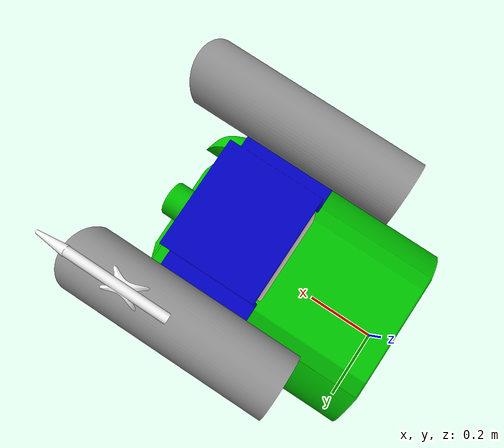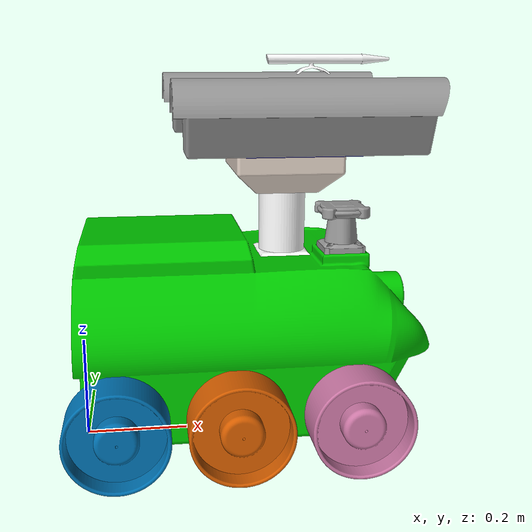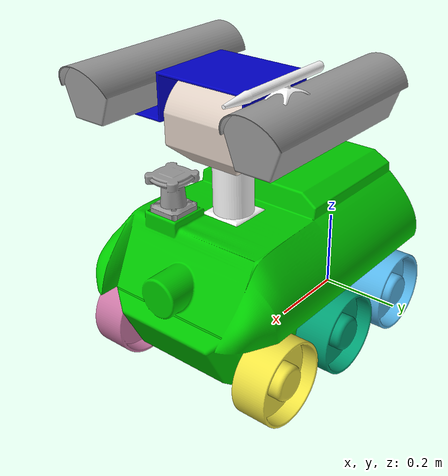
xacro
<?xml version="1.0"?>
<robot name="MRC_Plastun" xmlns:xacro="http://www.ros.org/wiki/xacro">

	<!-- Import all Gazebo-customization elements, including Gazebo colors -->
	<xacro:include filename="$(find plastun_description)/urdf/plastun.gazebo" />
	<!-- Import Rviz colors -->
	<xacro:include filename="$(find plastun_description)/urdf/materials.xacro" />

	<!-- Constants for robot dimensions -->
	<xacro:property name="chassis_z_offset" value="0.0435" />

	<xacro:property name="x_camera_offset" value="0.2" />
	<xacro:property name="y_camera_offset" value="0" />
	<xacro:property name="z_camera_offset" value="0.0546695" />

	<xacro:property name="x_lazer_ukazka_offset" value="0.171" />
	<xacro:property name="y_lazer_ukazka_offset" value="0" />
	<xacro:property name="z_lazer_ukazka_offset" value="0.045" />

	<xacro:property name="x_hokuyo_offset" value="0" />
	<xacro:property name="y_hokuyo_offset" value="0" />
	<xacro:property name="z_hokuyo_offset" value="0.1" />

	<xacro:property name="y_wheel" value="0.20499" />
	<xacro:property name="z_wheel" value=" 0.096" />
	<xacro:property name="between_wheels" value="0.22145" />

	<xacro:property name="x_camera" value="0" />
	<xacro:property name="y_camera" value="0.21" />
	<xacro:property name="z_camera" value="0.003" />

	<xacro:macro name="wheel" params="prefix num side rev collision">
		<link name="wheel_${prefix}_${num}">
			<inertial>
				<mass value="0.03"/>
				<origin rpy="0  0  0" xyz="0  0.000007723  0"/>
				<inertia ixx="0.000000000" ixy="0" ixz="0" iyy="0.000000000" iyz="0" izz="0.000000000"/>
			</inertial>
	<xacro:if value="${collision == 1}">
			<collision >
				<origin rpy="1.5708  0      0" xyz="0  0  0"/>
				<geometry>
					<cylinder length="0.09" radius="0.096"/>
				</geometry>
			</collision>
	</xacro:if>
			<visual>
				<origin rpy="0  0  0" xyz="0  0  0"/>
				<geometry>
					<mesh filename="package://plastun_description/meshes/STL_min/wheel.stl" scale="1.0 1.0 1.0"/>
				</geometry>
			</visual>
		</link>

		<joint name="wheel_${rev}_${num}" type="revolute">
			<parent link="chassis"/>
			<child link="wheel_${prefix}_${num}"/>
			<origin rpy="0       0      0" xyz="${0.0666644 + (num - 1) * between_wheels} ${y_wheel * side}   ${z_wheel}"/>
			<axis xyz="0 1  0"/>
			<limit effort="-1" lower="-1e+100" upper="1e+100" velocity="100"/>
		</joint>
	</xacro:macro>

	<xacro:macro name="transmission_wheel" params="rev num side_name collision">
	<xacro:if value="${collision == 1}">
		<transmission name="wheel_${side_name}_${num}">
			<type>transmission_interface/SimpleTransmission</type>
			<joint name="wheel_${rev}_${num}">
				<hardwareInterface>EffortJointInterface</hardwareInterface>
			</joint>
			<actuator name="wh_${side_name}_${num}">
				<hardwareInterface>EffortJointInterface</hardwareInterface>
				<mechanicalReduction>1</mechanicalReduction>
			</actuator>
		</transmission>
	</xacro:if>
	</xacro:macro>

	<xacro:macro name="camer" params="num side">
		<link name="camera_${num}">
			<inertial>
				<mass value="0.001"/>
				<origin rpy="0  0  0" xyz="0.000021536  -0.000000325  0.060192452"/>
				<inertia ixx="0.00034961" ixy="0" ixz="0" iyy="0.00243426" iyz="0" izz="0.0027544"/>
			</inertial>
			<collision >
				<origin rpy="0  0  0" xyz="-${x_camera_offset}  -${y_camera_offset}  -${z_camera_offset}"/>
				<geometry>
					<mesh filename="package://plastun_description/meshes/STL_min/camera.stl" scale="1 1 1"/>
				</geometry>
			</collision>
			<visual >
				<origin rpy="0  0  0" xyz="-${x_camera_offset}  -${y_camera_offset}  -${z_camera_offset}"/>
				<geometry>
					<mesh filename="package://plastun_description/meshes/STL_min/camera.stl" scale="1 1 1"/>
				</geometry>
			</visual>
		</link>

		<joint name="turrel_vverh_camera_${num}_fixed" type="fixed">
			<parent link="turrel_vverh"/>
			<child link="camera_${num}"/>
			<origin rpy="0       0       0" xyz="${x_camera + x_camera_offset}  ${(y_camera_offset + y_camera) * side} ${z_camera + z_camera_offset}"/>
			<axis xyz="0  0  0"/>
			<limit effort="0" lower="0" upper="0" velocity="0"/>
		</joint>
	</xacro:macro>

	<link name="base_link"/>

	<joint name="base_link_chassis_fixed" type="fixed">
		<parent link="base_link"/>
		<child link="chassis"/>
	</joint>

	<link name="chassis">
		<inertial>
			<mass value="35"/>
			<origin rpy="0  0  0" xyz="0.289120720 -0.000018254  0.186368419"/>
			<inertia ixx="3.1081800"  ixy="-0.25460189"  ixz="2.0318174" iyy="6.3787776" iyz="0.16417863" izz="5.3316425" />
		</inertial>
		<collision >
			<origin rpy="0  0  0" xyz="0 0  ${chassis_z_offset}"/>
			<geometry>
				<mesh filename="package://plastun_description/meshes/STL_min/chassis.stl" scale="1.0 1.0 1.0"/>
			</geometry>
		</collision>
		<visual >
			<origin rpy="0  0  0" xyz="0 0  ${chassis_z_offset}"/>
			<geometry>
				<mesh filename="package://plastun_description/meshes/STL_min/chassis.stl" scale="1 1 1"/>
			</geometry>
			<material name="green"/>
		</visual>
	</link>

	<!--laser sensors -->
	<link name="lazer_ukazka">
		<inertial>
			<mass value="0.001"/>
			<origin rpy="0  0  0" xyz="0.017977372  -0.000001823  0.034613516"/>
			<inertia ixx="0.0" ixy="0" ixz="0" iyy="0.0" iyz="0" izz="0.0"/>
		</inertial>
		<visual >
			<origin rpy="0  0  0" xyz="-${x_lazer_ukazka_offset}  -${y_lazer_ukazka_offset}  -${z_lazer_ukazka_offset}"/>
			<geometry>
				<mesh filename="package://plastun_description/meshes/STL_min/lazer_ukazka.stl" scale="1.0 1.0 1.0"/>
			</geometry>
			<material name="white"/>
		</visual>
	</link>

	<link name="hokuyo">
		<inertial>
			<mass value="0.3"/>
			<origin rpy="0  0  0" xyz="-0.000000763  -0.000000289  0.053961822"/>
			<inertia ixx="0.000000000" ixy="0" ixz="0" iyy="0.000000000" iyz="0" izz="0.000000000"/>
		</inertial>
		<visual >
			<origin rpy="0  0  0" xyz="-${x_hokuyo_offset}  -${y_hokuyo_offset}  -${z_hokuyo_offset}"/>
			<geometry>
				<mesh filename="package://plastun_description/meshes/STL_min/hokuyo.stl" scale="1 1 1"/>
			</geometry>
		</visual>
	</link>

	<!-- Turrel -->
	<link name="turrel_vniz">
		<inertial>
			<mass value="1"/>
			<origin rpy="0  0  0" xyz="0  0  0.072913938"/>
			<inertia ixx="0.166667" ixy="0" ixz="0" iyy="0.166667" iyz="0" izz="0.166667"/>
		</inertial>
		<collision >
			<origin rpy="0  0  0" xyz="0  0  0"/>
			<geometry>
				<mesh filename="package://plastun_description/meshes/STL_min/turrel_vniz.stl" scale="1.0 1.0 1.0"/>
			</geometry>
		</collision>
		<visual >
			<origin rpy="0  0  0" xyz="0  0  0"/>
			<geometry>
				<mesh filename="package://plastun_description/meshes/STL_min/turrel_vniz.stl" scale="1.0 1.0 1.0"/>
			</geometry>
			<material name="white"/>
		</visual>
	</link>

	<link name="turrel_sered">
		<inertial>
			<mass value="1"/>
			<origin rpy="0  0  0" xyz="0  -0.000000943  0.089683258"/>
			<inertia ixx="0.166667" ixy="0" ixz="0" iyy="0.166667" iyz="0" izz="0.166667"/>
		</inertial>
		<collision >
			<origin rpy="0  0  0" xyz="0  0  0"/>
			<geometry>
				<mesh filename="package://plastun_description/meshes/STL_min/turrel_sered.stl" scale="1.0 1.0 1.0"/>
			</geometry>
		</collision>
		<visual >
			<origin rpy="0  0  0" xyz="0  0  0"/>
			<geometry>
				<mesh filename="package://plastun_description/meshes/STL_min/turrel_sered.stl" scale="1.0 1.0 1.0"/>
			</geometry>
			<material name="brown"/>
		</visual>
	</link>

	<link name="turrel_vverh">
		<inertial>
			<mass value="1"/>
			<origin rpy="0  0  0" xyz="0    0   0.051670046"/>
			<inertia ixx="0.166667" ixy="0" ixz="0" iyy="0.166667" iyz="0" izz="0.166667"/>
		</inertial>
		<collision >
			<origin rpy="0  0  0" xyz="0    0   0"/>
			<geometry>
				<mesh filename="package://plastun_description/meshes/STL_min/turrel_vverh.stl" scale="1.0 1.0 1.0"/>
			</geometry>
		</collision>
		<visual >
			<origin rpy="0  0  0" xyz="0    0   0"/>
			<geometry>
				<mesh filename="package://plastun_description/meshes/STL_min/turrel_vverh.stl" scale="1.0 1.0 1.0"/>
			</geometry>
			<material name="blue"/>
		</visual>
	</link>

	<!--cameras (links and joints(fix with turrel_verh)) -->
	<xacro:camer num="1" side="1"/>
	<xacro:camer num="2" side="-1"/>

	<!-- wheels (links and joints(revolute, parrent - chassis))-->
	<xacro:wheel prefix="left" num="1" side="1" rev="lev" collision="1"/>
	<xacro:wheel prefix="left" num="2" side="1" rev="lev" collision="0"/>
	<xacro:wheel prefix="left" num="3" side="1" rev="lev" collision="1"/>
	<xacro:wheel prefix="right" num="1" side="-1" rev="prav" collision="1"/>
	<xacro:wheel prefix="right" num="2" side="-1" rev="prav" collision="0"/>
	<xacro:wheel prefix="right" num="3" side="-1" rev="prav" collision="1"/>

	<!--fix'es joints -->
	<joint name="camera_1_lazer_ukazka_fixed" type="fixed">
		<parent link="camera_1"/>
		<child link="lazer_ukazka"/>
		<origin rpy="0       0      0" xyz="${x_lazer_ukazka_offset - 0.1}  ${y_lazer_ukazka_offset}  ${z_lazer_ukazka_offset + 0.05}"/>
		<axis xyz="0  0  0"/>
		<limit effort="0" lower="0" upper="0" velocity="0"/>
	</joint>

	<joint name="chassis_hokuyo_fixed" type="fixed">
		<parent link="chassis"/>
		<child link="hokuyo"/>
		<origin rpy="0       0       0" xyz="${x_hokuyo_offset + 0.4941421}  ${y_hokuyo_offset + -0.083}  ${chassis_z_offset + 0.325 + z_hokuyo_offset}"/>
		<axis xyz="0  0  0"/>
		<limit effort="0" lower="0" upper="0" velocity="0"/>
	</joint>

	<joint name="chassis_turrel_vniz_fixed" type="fixed">
		<parent link="chassis"/>
		<child link="turrel_vniz"/>
		<origin rpy="0 0  0" xyz="0.395 0  ${chassis_z_offset + 0.325}"/>
		<axis xyz="0  0  0"/>
		<limit effort="0" lower="0" upper="0" velocity="0"/>
	</joint>

	<!-- revolute joints -->
	<joint name="turrel_vniz_turrel_sered_revolute" type="revolute">
		<parent link="turrel_vniz"/>
		<child link="turrel_sered"/>
		<origin rpy="0  0   0" xyz="0 0  0.1296088"/>
		<axis xyz="0  0  1"/>
		<limit effort="1" lower="-3.139" upper="3.139" velocity="100"/>
	</joint>

	<joint name="turrel_sered_turrel_vverh_up_to_down" type="revolute">
		<parent link="turrel_sered"/>
		<child link="turrel_vverh"/>
		<origin rpy="0   0   0" xyz="0  0 0.0890008"/>
		<axis xyz="0  -1  0"/>
		<limit effort="1" lower="-1" upper="1" velocity="100"/>
	</joint>

	<!--transmitions-->
	<transmission name="turrel_revol">
		<type>transmission_interface/SimpleTransmission</type>
		<joint name="turrel_vniz_turrel_sered_revolute">
			<hardwareInterface>EffortJointInterface</hardwareInterface>
		</joint>
		<actuator name="tl_rev">
			<hardwareInterface>EffortJointInterface</hardwareInterface>
			<mechanicalReduction>1</mechanicalReduction>
		</actuator>
	</transmission>

	<transmission name="turrel_up_to_down">
		<type>transmission_interface/SimpleTransmission</type>
		<joint name="turrel_sered_turrel_vverh_up_to_down">
			<hardwareInterface>EffortJointInterface</hardwareInterface>
		</joint>
		<actuator name="tl_ud">
			<hardwareInterface>EffortJointInterface</hardwareInterface>
			<mechanicalReduction>1</mechanicalReduction>
		</actuator>
	</transmission>

	<xacro:transmission_wheel num="1" side_name="l" rev="lev" collision="1"/>
	<xacro:transmission_wheel num="2" side_name="l" rev="lev" collision="1"/>
	<xacro:transmission_wheel num="3" side_name="l" rev="lev" collision="1"/>
	<xacro:transmission_wheel num="1" side_name="r" rev="prav" collision="1"/>
	<xacro:transmission_wheel num="2" side_name="r" rev="prav" collision="1"/>
	<xacro:transmission_wheel num="3" side_name="r" rev="prav" collision="1"/>

</robot>

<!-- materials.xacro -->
<robot>
<!-- Import Rviz colors -->
  <material name="black">
    <color rgba="0.0 0.0 0.0 1.0"/>
  </material>

  <material name="blue">
    <color rgba="0.0 0.0 0.8 1.0"/>
  </material>

  <material name="green">
    <color rgba="0.0 0.8 0.0 1.0"/>
  </material>

  <material name="grey">
    <color rgba="0.2 0.2 0.2 1.0"/>
  </material>

  <material name="orange">
    <color rgba="${255/255} ${108/255} ${10/255} 1.0"/>
  </material>

  <material name="brown">
    <color rgba="${222/255} ${207/255} ${195/255} 1.0"/>
  </material>

  <material name="red">
    <color rgba="0.8 0.0 0.0 1.0"/>
  </material>

  <material name="white">
    <color rgba="1.0 1.0 1.0 1.0"/>
  </material>

</robot>
